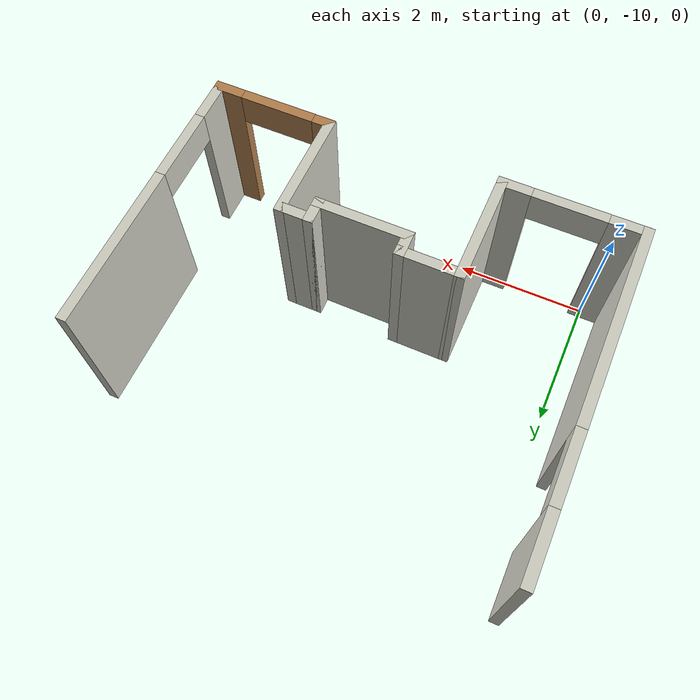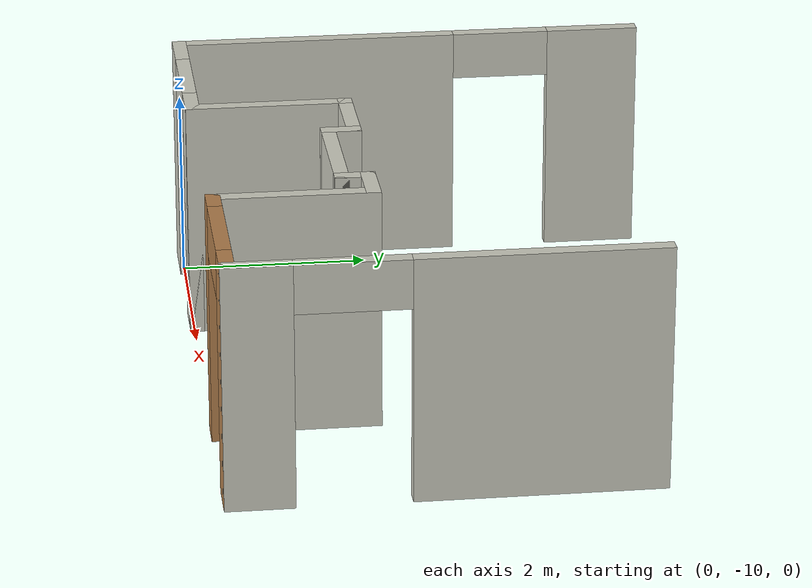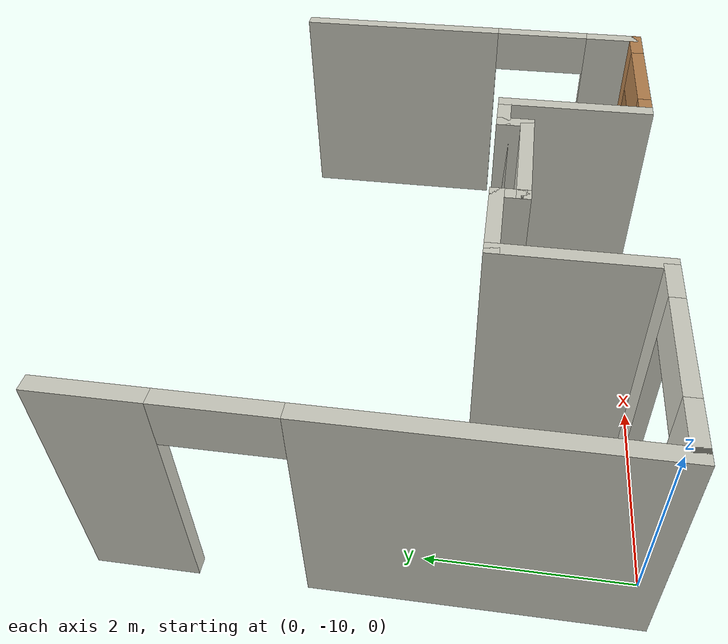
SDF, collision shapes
<sdf version="1.6">
 <model name="teknopark">
  <link name="Wall_55">
   <pose>-0.351077 -7.493 0 0 0 -1.5708</pose>
   <inertial>
    <mass>1</mass>
    <inertia><ixx>1</ixx><ixy>0</ixy><ixz>0</ixz><iyy>1</iyy><iyz>0</iyz><izz>1</izz></inertia>
   </inertial>
   <visual name="Wall_55_Visual_0">
    <pose>-2.05615 0 1.25 0 -0 0</pose>
    <geometry><box><size>0.994179 0.15 2.5</size></box></geometry>
    <material>
     <script><uri>file://media/materials/scripts/gazebo.material</uri><name>Gazebo/PaintedWall</name></script>
     <ambient>1 1 1 1</ambient>
     <diffuse>0.7 0.7 0.7 1</diffuse>
     <specular>0.01 0.01 0.01 1</specular>
     <emissive>0 0 0 1</emissive>
     <shader type="vertex"><normal_map>__default__</normal_map></shader>
    </material>
   </visual>
   <visual name="Wall_55_Visual_1">
    <pose>1.01709 0 1.25 0 -0 0</pose>
    <geometry><box><size>3.07229 0.15 2.5</size></box></geometry>
    <material>
     <script><uri>file://media/materials/scripts/gazebo.material</uri><name>Gazebo/PaintedWall</name></script>
     <ambient>1 1 1 1</ambient>
     <diffuse>0.7 0.7 0.7 1</diffuse>
     <specular>0.01 0.01 0.01 1</specular>
     <emissive>0 0 0 1</emissive>
     <shader type="vertex"><normal_map>__default__</normal_map></shader>
    </material>
   </visual>
   <visual name="Wall_55_Door">
    <pose>-1.03906 0 0 0 -0 0</pose>
    <geometry>
     <mesh><uri>model://teknopark/meshes/Door_Component_BI3.dae</uri><scale>1.2 1 1</scale></mesh>
    </geometry>
    <material>
     <ambient>0 0 1 1</ambient>
     <diffuse>0 0 1 1</diffuse>
     <specular>0.1 0.1 0.1 1</specular>
     <emissive>0 0 0 1</emissive>
     <script><name>Gazebo/Blue</name><uri>__default__</uri></script>
     <shader type="vertex"><normal_map>__default__</normal_map></shader>
    </material>
   </visual>
   <visual name="Wall_55_Visual_2">
    <pose>-1.03906 0 2.25 0 -0 0</pose>
    <geometry><box><size>1.04 0.15 0.5</size></box></geometry>
    <material>
     <script><uri>file://media/materials/scripts/gazebo.material</uri><name>Gazebo/PaintedWall</name></script>
     <ambient>1 1 1 1</ambient>
     <diffuse>0.7 0.7 0.7 1</diffuse>
     <specular>0.01 0.01 0.01 1</specular>
     <emissive>0 0 0 1</emissive>
     <shader type="vertex"><normal_map>__default__</normal_map></shader>
    </material>
   </visual>
   <collision name="Wall_55_Collision_1">
    <pose>1.01709 0 1.25 0 -0 0</pose>
    <geometry><box><size>3.07229 0.15 2.5</size></box></geometry>
    <surface>
     <friction>
      <ode><mu>1</mu><mu2>1</mu2><fdir1>0 0 0</fdir1><slip1>0</slip1><slip2>0</slip2></ode>
      <torsional>
       <coefficient>1</coefficient>
       <patch_radius>0</patch_radius>
       <surface_radius>0</surface_radius>
       <use_patch_radius>1</use_patch_radius>
       <ode><slip>0</slip></ode>
      </torsional>
     </friction>
     <bounce><restitution_coefficient>0</restitution_coefficient><threshold>1e+06</threshold></bounce>
     <contact>
      <collide_without_contact>0</collide_without_contact>
      <collide_without_contact_bitmask>1</collide_without_contact_bitmask>
      <collide_bitmask>1</collide_bitmask>
      <ode>
       <soft_cfm>0</soft_cfm>
       <soft_erp>0.2</soft_erp>
       <kp>1e+13</kp>
       <kd>1</kd>
       <max_vel>0.01</max_vel>
       <min_depth>0</min_depth>
      </ode>
      <bullet>
       <split_impulse>1</split_impulse>
       <split_impulse_penetration_threshold>-0.01</split_impulse_penetration_threshold>
       <soft_cfm>0</soft_cfm>
       <soft_erp>0.2</soft_erp>
       <kp>1e+13</kp>
       <kd>1</kd>
      </bullet>
     </contact>
    </surface>
   </collision>
   <collision name="Wall_55_Collision_0">
    <pose>-2.05615 0 1.25 0 -0 0</pose>
    <geometry><box><size>0.994179 0.15 2.5</size></box></geometry>
    <surface>
     <friction>
      <ode><mu>1</mu><mu2>1</mu2><fdir1>0 0 0</fdir1><slip1>0</slip1><slip2>0</slip2></ode>
      <torsional>
       <coefficient>1</coefficient>
       <patch_radius>0</patch_radius>
       <surface_radius>0</surface_radius>
       <use_patch_radius>1</use_patch_radius>
       <ode><slip>0</slip></ode>
      </torsional>
     </friction>
     <bounce><restitution_coefficient>0</restitution_coefficient><threshold>1e+06</threshold></bounce>
     <contact>
      <collide_without_contact>0</collide_without_contact>
      <collide_without_contact_bitmask>1</collide_without_contact_bitmask>
      <collide_bitmask>1</collide_bitmask>
      <ode>
       <soft_cfm>0</soft_cfm>
       <soft_erp>0.2</soft_erp>
       <kp>1e+13</kp>
       <kd>1</kd>
       <max_vel>0.01</max_vel>
       <min_depth>0</min_depth>
      </ode>
      <bullet>
       <split_impulse>1</split_impulse>
       <split_impulse_penetration_threshold>-0.01</split_impulse_penetration_threshold>
       <soft_cfm>0</soft_cfm>
       <soft_erp>0.2</soft_erp>
       <kp>1e+13</kp>
       <kd>1</kd>
      </bullet>
     </contact>
    </surface>
   </collision>
   <collision name="Wall_55_Collision_2">
    <pose>-1.03906 0 2.25 0 -0 0</pose>
    <geometry><box><size>1.04 0.15 0.5</size></box></geometry>
    <surface>
     <friction>
      <ode><mu>1</mu><mu2>1</mu2><fdir1>0 0 0</fdir1><slip1>0</slip1><slip2>0</slip2></ode>
      <torsional>
       <coefficient>1</coefficient>
       <patch_radius>0</patch_radius>
       <surface_radius>0</surface_radius>
       <use_patch_radius>1</use_patch_radius>
       <ode><slip>0</slip></ode>
      </torsional>
     </friction>
     <bounce><restitution_coefficient>0</restitution_coefficient><threshold>1e+06</threshold></bounce>
     <contact>
      <collide_without_contact>0</collide_without_contact>
      <collide_without_contact_bitmask>1</collide_without_contact_bitmask>
      <collide_bitmask>1</collide_bitmask>
      <ode>
       <soft_cfm>0</soft_cfm>
       <soft_erp>0.2</soft_erp>
       <kp>1e+13</kp>
       <kd>1</kd>
       <max_vel>0.01</max_vel>
       <min_depth>0</min_depth>
      </ode>
      <bullet>
       <split_impulse>1</split_impulse>
       <split_impulse_penetration_threshold>-0.01</split_impulse_penetration_threshold>
       <soft_cfm>0</soft_cfm>
       <soft_erp>0.2</soft_erp>
       <kp>1e+13</kp>
       <kd>1</kd>
      </bullet>
     </contact>
    </surface>
   </collision>
  </link>
  <link name="Wall_56">
   <pose>0.671923 -9.9715 0 0 -0 0</pose>
   <inertial>
    <mass>1</mass>
    <inertia><ixx>1</ixx><ixy>0</ixy><ixz>0</ixz><iyy>1</iyy><iyz>0</iyz><izz>1</izz></inertia>
   </inertial>
   <visual name="ModelPreview_1::Wall_56::visual_4">
    <pose>-0.797809 0 1.25 0 -0 0</pose>
    <geometry><box><size>0.600382 0.15 2.5</size></box></geometry>
    <material>
     <script><uri>file://media/materials/scripts/gazebo.material</uri><name>Gazebo/PaintedWall</name></script>
     <ambient>1 1 1 1</ambient>
     <diffuse>0.7 0.7 0.7 1</diffuse>
     <specular>0.01 0.01 0.01 1</specular>
     <emissive>0 0 0 1</emissive>
     <shader type="vertex"><normal_map>__default__</normal_map></shader>
    </material>
   </visual>
   <visual name="Wall_56_Visual_0">
    <pose>-0.797809 0 1.25 0 -0 0</pose>
    <geometry><box><size>0.600382 0.15 2.5</size></box></geometry>
    <material>
     <script><uri>file://media/materials/scripts/gazebo.material</uri><name>Gazebo/PaintedWall</name></script>
     <ambient>1 1 1 1</ambient>
     <diffuse>0.7 0.7 0.7 1</diffuse>
     <specular>0.01 0.01 0.01 1</specular>
     <emissive>0 0 0 1</emissive>
     <shader type="vertex"><normal_map>__default__</normal_map></shader>
    </material>
   </visual>
   <visual name="Wall_56_Door">
    <pose>0.044425 0 0 0 -0 0</pose>
    <geometry>
     <mesh><uri>model://teknopark/meshes/Door_Component_BI3.dae</uri><scale>1.2 1 1</scale></mesh>
    </geometry>
    <material>
     <shader type="vertex"><normal_map>__default__</normal_map></shader>
     <ambient>1 0 0 1</ambient>
     <diffuse>1 0 0 1</diffuse>
     <specular>0.1 0.1 0.1 1</specular>
     <emissive>0 0 0 1</emissive>
     <script><name>Gazebo/Red</name><uri>__default__</uri></script>
    </material>
   </visual>
   <visual name="Wall_56_Visual_2">
    <pose>0.044435 0 2.25 0 -0 0</pose>
    <geometry><box><size>1.08411 0.15 0.5</size></box></geometry>
    <material>
     <script><uri>file://media/materials/scripts/gazebo.material</uri><name>Gazebo/PaintedWall</name></script>
     <ambient>1 1 1 1</ambient>
     <diffuse>0.7 0.7 0.7 1</diffuse>
     <specular>0.01 0.01 0.01 1</specular>
     <emissive>0 0 0 1</emissive>
     <shader type="vertex"><normal_map>__default__</normal_map></shader>
    </material>
   </visual>
   <visual name="ModelPreview_3::Wall_56::visual_3">
    <pose>-0.797809 0 1.25 0 -0 0</pose>
    <geometry><box><size>0.600382 0.15 2.5</size></box></geometry>
    <material>
     <script><uri>file://media/materials/scripts/gazebo.material</uri><name>Gazebo/PaintedWall</name></script>
     <ambient>1 1 1 1</ambient>
     <diffuse>0.7 0.7 0.7 1</diffuse>
     <specular>0.01 0.01 0.01 1</specular>
     <emissive>0 0 0 1</emissive>
     <shader type="vertex"><normal_map>__default__</normal_map></shader>
    </material>
   </visual>
   <visual name="Wall_56_Visual_1">
    <pose>0.842243 0 1.25 0 -0 0</pose>
    <geometry><box><size>0.511513 0.15 2.5</size></box></geometry>
    <material>
     <script><uri>file://media/materials/scripts/gazebo.material</uri><name>Gazebo/PaintedWall</name></script>
     <ambient>1 1 1 1</ambient>
     <diffuse>0.7 0.7 0.7 1</diffuse>
     <specular>0.01 0.01 0.01 1</specular>
     <emissive>0 0 0 1</emissive>
     <shader type="vertex"><normal_map>__default__</normal_map></shader>
    </material>
   </visual>
   <collision name="Wall_56_Collision_1">
    <pose>0.842243 0 1.25 0 -0 0</pose>
    <geometry><box><size>0.511513 0.15 2.5</size></box></geometry>
    <surface>
     <friction>
      <ode><mu>1</mu><mu2>1</mu2><fdir1>0 0 0</fdir1><slip1>0</slip1><slip2>0</slip2></ode>
      <torsional>
       <coefficient>1</coefficient>
       <patch_radius>0</patch_radius>
       <surface_radius>0</surface_radius>
       <use_patch_radius>1</use_patch_radius>
       <ode><slip>0</slip></ode>
      </torsional>
     </friction>
     <bounce><restitution_coefficient>0</restitution_coefficient><threshold>1e+06</threshold></bounce>
     <contact>
      <collide_without_contact>0</collide_without_contact>
      <collide_without_contact_bitmask>1</collide_without_contact_bitmask>
      <collide_bitmask>1</collide_bitmask>
      <ode>
       <soft_cfm>0</soft_cfm>
       <soft_erp>0.2</soft_erp>
       <kp>1e+13</kp>
       <kd>1</kd>
       <max_vel>0.01</max_vel>
       <min_depth>0</min_depth>
      </ode>
      <bullet>
       <split_impulse>1</split_impulse>
       <split_impulse_penetration_threshold>-0.01</split_impulse_penetration_threshold>
       <soft_cfm>0</soft_cfm>
       <soft_erp>0.2</soft_erp>
       <kp>1e+13</kp>
       <kd>1</kd>
      </bullet>
     </contact>
    </surface>
   </collision>
   <collision name="Wall_56_Collision_0">
    <pose>-0.797809 0 1.25 0 -0 0</pose>
    <geometry><box><size>0.600382 0.15 2.5</size></box></geometry>
    <surface>
     <friction>
      <ode><mu>1</mu><mu2>1</mu2><fdir1>0 0 0</fdir1><slip1>0</slip1><slip2>0</slip2></ode>
      <torsional>
       <coefficient>1</coefficient>
       <patch_radius>0</patch_radius>
       <surface_radius>0</surface_radius>
       <use_patch_radius>1</use_patch_radius>
       <ode><slip>0</slip></ode>
      </torsional>
     </friction>
     <bounce><restitution_coefficient>0</restitution_coefficient><threshold>1e+06</threshold></bounce>
     <contact>
      <collide_without_contact>0</collide_without_contact>
      <collide_without_contact_bitmask>1</collide_without_contact_bitmask>
      <collide_bitmask>1</collide_bitmask>
      <ode>
       <soft_cfm>0</soft_cfm>
       <soft_erp>0.2</soft_erp>
       <kp>1e+13</kp>
       <kd>1</kd>
       <max_vel>0.01</max_vel>
       <min_depth>0</min_depth>
      </ode>
      <bullet>
       <split_impulse>1</split_impulse>
       <split_impulse_penetration_threshold>-0.01</split_impulse_penetration_threshold>
       <soft_cfm>0</soft_cfm>
       <soft_erp>0.2</soft_erp>
       <kp>1e+13</kp>
       <kd>1</kd>
      </bullet>
     </contact>
    </surface>
   </collision>
   <collision name="Wall_56_Collision_2">
    <pose>0.044435 0 2.25 0 -0 0</pose>
    <geometry><box><size>1.08411 0.15 0.5</size></box></geometry>
    <surface>
     <friction>
      <ode><mu>1</mu><mu2>1</mu2><fdir1>0 0 0</fdir1><slip1>0</slip1><slip2>0</slip2></ode>
      <torsional>
       <coefficient>1</coefficient>
       <patch_radius>0</patch_radius>
       <surface_radius>0</surface_radius>
       <use_patch_radius>1</use_patch_radius>
       <ode><slip>0</slip></ode>
      </torsional>
     </friction>
     <bounce><restitution_coefficient>0</restitution_coefficient><threshold>1e+06</threshold></bounce>
     <contact>
      <collide_without_contact>0</collide_without_contact>
      <collide_without_contact_bitmask>1</collide_without_contact_bitmask>
      <collide_bitmask>1</collide_bitmask>
      <ode>
       <soft_cfm>0</soft_cfm>
       <soft_erp>0.2</soft_erp>
       <kp>1e+13</kp>
       <kd>1</kd>
       <max_vel>0.01</max_vel>
       <min_depth>0</min_depth>
      </ode>
      <bullet>
       <split_impulse>1</split_impulse>
       <split_impulse_penetration_threshold>-0.01</split_impulse_penetration_threshold>
       <soft_cfm>0</soft_cfm>
       <soft_erp>0.2</soft_erp>
       <kp>1e+13</kp>
       <kd>1</kd>
      </bullet>
     </contact>
    </surface>
   </collision>
  </link>
  <link name="Wall_57">
   <pose>1.69492 -9.1765 0 0 -0 1.5708</pose>
   <inertial>
    <mass>1</mass>
    <inertia><ixx>1</ixx><ixy>0</ixy><ixz>0</ixz><iyy>1</iyy><iyz>0</iyz><izz>1</izz></inertia>
   </inertial>
   <visual name="Wall_57_Visual">
    <pose>0 0 1.25 0 -0 0</pose>
    <geometry><box><size>1.74 0.15 2.5</size></box></geometry>
    <material>
     <script><uri>file://media/materials/scripts/gazebo.material</uri><name>Gazebo/PaintedWall</name></script>
     <ambient>1 1 1 1</ambient>
     <diffuse>0.7 0.7 0.7 1</diffuse>
     <specular>0.01 0.01 0.01 1</specular>
     <emissive>0 0 0 1</emissive>
     <shader type="vertex"><normal_map>__default__</normal_map></shader>
    </material>
   </visual>
   <visual name="ModelPreview_3::Wall_57::visual_1">
    <pose>0 0 1.25 0 -0 0</pose>
    <geometry><box><size>1.74 0.15 2.5</size></box></geometry>
    <material>
     <script><uri>file://media/materials/scripts/gazebo.material</uri><name>Gazebo/Grey</name></script>
     <ambient>1 1 1 1</ambient>
     <diffuse>0.7 0.7 0.7 1</diffuse>
     <specular>0.01 0.01 0.01 1</specular>
     <emissive>0 0 0 1</emissive>
     <shader type="vertex"><normal_map>__default__</normal_map></shader>
    </material>
   </visual>
   <collision name="Wall_57_Collision">
    <pose>0 0 1.25 0 -0 0</pose>
    <geometry><box><size>1.74 0.15 2.5</size></box></geometry>
    <surface>
     <friction>
      <ode><mu>1</mu><mu2>1</mu2><fdir1>0 0 0</fdir1><slip1>0</slip1><slip2>0</slip2></ode>
      <torsional>
       <coefficient>1</coefficient>
       <patch_radius>0</patch_radius>
       <surface_radius>0</surface_radius>
       <use_patch_radius>1</use_patch_radius>
       <ode><slip>0</slip></ode>
      </torsional>
     </friction>
     <bounce><restitution_coefficient>0</restitution_coefficient><threshold>1e+06</threshold></bounce>
     <contact>
      <collide_without_contact>0</collide_without_contact>
      <collide_without_contact_bitmask>1</collide_without_contact_bitmask>
      <collide_bitmask>1</collide_bitmask>
      <ode>
       <soft_cfm>0</soft_cfm>
       <soft_erp>0.2</soft_erp>
       <kp>1e+13</kp>
       <kd>1</kd>
       <max_vel>0.01</max_vel>
       <min_depth>0</min_depth>
      </ode>
      <bullet>
       <split_impulse>1</split_impulse>
       <split_impulse_penetration_threshold>-0.01</split_impulse_penetration_threshold>
       <soft_cfm>0</soft_cfm>
       <soft_erp>0.2</soft_erp>
       <kp>1e+13</kp>
       <kd>1</kd>
      </bullet>
     </contact>
    </surface>
   </collision>
  </link>
  <link name="Wall_59">
   <pose>2.11992 -8.3815 0 0 0 -1e-06</pose>
   <inertial>
    <mass>1</mass>
    <inertia><ixx>1</ixx><ixy>0</ixy><ixz>0</ixz><iyy>1</iyy><iyz>0</iyz><izz>1</izz></inertia>
   </inertial>
   <visual name="Wall_59_Visual">
    <pose>0 0 1.25 0 -0 0</pose>
    <geometry><box><size>1 0.15 2.5</size></box></geometry>
    <material>
     <script><uri>file://media/materials/scripts/gazebo.material</uri><name>Gazebo/PaintedWall</name></script>
     <ambient>1 1 1 1</ambient>
     <diffuse>0.7 0.7 0.7 1</diffuse>
     <specular>0.01 0.01 0.01 1</specular>
     <emissive>0 0 0 1</emissive>
     <shader type="vertex"><normal_map>__default__</normal_map></shader>
    </material>
   </visual>
   <collision name="Wall_59_Collision">
    <pose>0 0 1.25 0 -0 0</pose>
    <geometry><box><size>1 0.15 2.5</size></box></geometry>
    <surface>
     <friction>
      <ode><mu>1</mu><mu2>1</mu2><fdir1>0 0 0</fdir1><slip1>0</slip1><slip2>0</slip2></ode>
      <torsional>
       <coefficient>1</coefficient>
       <patch_radius>0</patch_radius>
       <surface_radius>0</surface_radius>
       <use_patch_radius>1</use_patch_radius>
       <ode><slip>0</slip></ode>
      </torsional>
     </friction>
     <bounce><restitution_coefficient>0</restitution_coefficient><threshold>1e+06</threshold></bounce>
     <contact>
      <collide_without_contact>0</collide_without_contact>
      <collide_without_contact_bitmask>1</collide_without_contact_bitmask>
      <collide_bitmask>1</collide_bitmask>
      <ode>
       <soft_cfm>0</soft_cfm>
       <soft_erp>0.2</soft_erp>
       <kp>1e+13</kp>
       <kd>1</kd>
       <max_vel>0.01</max_vel>
       <min_depth>0</min_depth>
      </ode>
      <bullet>
       <split_impulse>1</split_impulse>
       <split_impulse_penetration_threshold>-0.01</split_impulse_penetration_threshold>
       <soft_cfm>0</soft_cfm>
       <soft_erp>0.2</soft_erp>
       <kp>1e+13</kp>
       <kd>1</kd>
      </bullet>
     </contact>
    </surface>
   </collision>
  </link>
  <link name="Wall_61">
   <pose>2.54492 -8.5135 0 0 0 -1.5708</pose>
   <inertial>
    <mass>1</mass>
    <inertia><ixx>1</ixx><ixy>0</ixy><ixz>0</ixz><iyy>1</iyy><iyz>0</iyz><izz>1</izz></inertia>
   </inertial>
   <visual name="Wall_61_Visual">
    <pose>0 0 1.25 0 -0 0</pose>
    <geometry><box><size>0.414 0.15 2.5</size></box></geometry>
    <material>
     <script><uri>file://media/materials/scripts/gazebo.material</uri><name>Gazebo/PaintedWall</name></script>
     <ambient>1 1 1 1</ambient>
     <diffuse>0.7 0.7 0.7 1</diffuse>
     <specular>0.01 0.01 0.01 1</specular>
     <emissive>0 0 0 1</emissive>
     <shader type="vertex"><normal_map>__default__</normal_map></shader>
    </material>
   </visual>
   <collision name="Wall_61_Collision">
    <pose>0 0 1.25 0 -0 0</pose>
    <geometry><box><size>0.414 0.15 2.5</size></box></geometry>
    <surface>
     <friction>
      <ode><mu>1</mu><mu2>1</mu2><fdir1>0 0 0</fdir1><slip1>0</slip1><slip2>0</slip2></ode>
      <torsional>
       <coefficient>1</coefficient>
       <patch_radius>0</patch_radius>
       <surface_radius>0</surface_radius>
       <use_patch_radius>1</use_patch_radius>
       <ode><slip>0</slip></ode>
      </torsional>
     </friction>
     <bounce><restitution_coefficient>0</restitution_coefficient><threshold>1e+06</threshold></bounce>
     <contact>
      <collide_without_contact>0</collide_without_contact>
      <collide_without_contact_bitmask>1</collide_without_contact_bitmask>
      <collide_bitmask>1</collide_bitmask>
      <ode>
       <soft_cfm>0</soft_cfm>
       <soft_erp>0.2</soft_erp>
       <kp>1e+13</kp>
       <kd>1</kd>
       <max_vel>0.01</max_vel>
       <min_depth>0</min_depth>
      </ode>
      <bullet>
       <split_impulse>1</split_impulse>
       <split_impulse_penetration_threshold>-0.01</split_impulse_penetration_threshold>
       <soft_cfm>0</soft_cfm>
       <soft_erp>0.2</soft_erp>
       <kp>1e+13</kp>
       <kd>1</kd>
      </bullet>
     </contact>
    </surface>
   </collision>
  </link>
  <link name="Wall_62">
   <pose>3.20242 -8.6455 0 0 -0 0</pose>
   <inertial>
    <mass>1</mass>
    <inertia><ixx>1</ixx><ixy>0</ixy><ixz>0</ixz><iyy>1</iyy><iyz>0</iyz><izz>1</izz></inertia>
   </inertial>
   <visual name="Wall_62_Visual">
    <pose>0 0 1.25 0 -0 0</pose>
    <geometry><box><size>1.465 0.15 2.5</size></box></geometry>
    <material>
     <script><uri>file://media/materials/scripts/gazebo.material</uri><name>Gazebo/PaintedWall</name></script>
     <ambient>1 1 1 1</ambient>
     <diffuse>0.7 0.7 0.7 1</diffuse>
     <specular>0.01 0.01 0.01 1</specular>
     <emissive>0 0 0 1</emissive>
     <shader type="vertex"><normal_map>__default__</normal_map></shader>
    </material>
   </visual>
   <collision name="Wall_62_Collision">
    <pose>0 0 1.25 0 -0 0</pose>
    <geometry><box><size>1.465 0.15 2.5</size></box></geometry>
    <surface>
     <friction>
      <ode><mu>1</mu><mu2>1</mu2><fdir1>0 0 0</fdir1><slip1>0</slip1><slip2>0</slip2></ode>
      <torsional>
       <coefficient>1</coefficient>
       <patch_radius>0</patch_radius>
       <surface_radius>0</surface_radius>
       <use_patch_radius>1</use_patch_radius>
       <ode><slip>0</slip></ode>
      </torsional>
     </friction>
     <bounce><restitution_coefficient>0</restitution_coefficient><threshold>1e+06</threshold></bounce>
     <contact>
      <collide_without_contact>0</collide_without_contact>
      <collide_without_contact_bitmask>1</collide_without_contact_bitmask>
      <collide_bitmask>1</collide_bitmask>
      <ode>
       <soft_cfm>0</soft_cfm>
       <soft_erp>0.2</soft_erp>
       <kp>1e+13</kp>
       <kd>1</kd>
       <max_vel>0.01</max_vel>
       <min_depth>0</min_depth>
      </ode>
      <bullet>
       <split_impulse>1</split_impulse>
       <split_impulse_penetration_threshold>-0.01</split_impulse_penetration_threshold>
       <soft_cfm>0</soft_cfm>
       <soft_erp>0.2</soft_erp>
       <kp>1e+13</kp>
       <kd>1</kd>
      </bullet>
     </contact>
    </surface>
   </collision>
  </link>
  <link name="Wall_63">
   <pose>3.85992 -8.5135 0 0 -0 1.5708</pose>
   <inertial>
    <mass>1</mass>
    <inertia><ixx>1</ixx><ixy>0</ixy><ixz>0</ixz><iyy>1</iyy><iyz>0</iyz><izz>1</izz></inertia>
   </inertial>
   <visual name="Wall_63_Visual">
    <pose>0 0 1.25 0 -0 0</pose>
    <geometry><box><size>0.414 0.15 2.5</size></box></geometry>
    <material>
     <script><uri>file://media/materials/scripts/gazebo.material</uri><name>Gazebo/PaintedWall</name></script>
     <ambient>1 1 1 1</ambient>
     <diffuse>0.7 0.7 0.7 1</diffuse>
     <specular>0.01 0.01 0.01 1</specular>
     <emissive>0 0 0 1</emissive>
     <shader type="vertex"><normal_map>__default__</normal_map></shader>
    </material>
   </visual>
   <collision name="Wall_63_Collision">
    <pose>0 0 1.25 0 -0 0</pose>
    <geometry><box><size>0.414 0.15 2.5</size></box></geometry>
    <surface>
     <friction>
      <ode><mu>1</mu><mu2>1</mu2><fdir1>0 0 0</fdir1><slip1>0</slip1><slip2>0</slip2></ode>
      <torsional>
       <coefficient>1</coefficient>
       <patch_radius>0</patch_radius>
       <surface_radius>0</surface_radius>
       <use_patch_radius>1</use_patch_radius>
       <ode><slip>0</slip></ode>
      </torsional>
     </friction>
     <bounce><restitution_coefficient>0</restitution_coefficient><threshold>1e+06</threshold></bounce>
     <contact>
      <collide_without_contact>0</collide_without_contact>
      <collide_without_contact_bitmask>1</collide_without_contact_bitmask>
      <collide_bitmask>1</collide_bitmask>
      <ode>
       <soft_cfm>0</soft_cfm>
       <soft_erp>0.2</soft_erp>
       <kp>1e+13</kp>
       <kd>1</kd>
       <max_vel>0.01</max_vel>
       <min_depth>0</min_depth>
      </ode>
      <bullet>
       <split_impulse>1</split_impulse>
       <split_impulse_penetration_threshold>-0.01</split_impulse_penetration_threshold>
       <soft_cfm>0</soft_cfm>
       <soft_erp>0.2</soft_erp>
       <kp>1e+13</kp>
       <kd>1</kd>
      </bullet>
     </contact>
    </surface>
   </collision>
  </link>
  <link name="Wall_64">
   <pose>4.07492 -8.3815 0 0 -0 0</pose>
   <inertial>
    <mass>1</mass>
    <inertia><ixx>1</ixx><ixy>0</ixy><ixz>0</ixz><iyy>1</iyy><iyz>0</iyz><izz>1</izz></inertia>
   </inertial>
   <visual name="Wall_64_Visual">
    <pose>0 0 1.25 0 -0 0</pose>
    <geometry><box><size>0.58 0.15 2.5</size></box></geometry>
    <material>
     <script><uri>file://media/materials/scripts/gazebo.material</uri><name>Gazebo/PaintedWall</name></script>
     <ambient>1 1 1 1</ambient>
     <diffuse>0.7 0.7 0.7 1</diffuse>
     <specular>0.01 0.01 0.01 1</specular>
     <emissive>0 0 0 1</emissive>
     <shader type="vertex"><normal_map>__default__</normal_map></shader>
    </material>
   </visual>
   <collision name="Wall_64_Collision">
    <pose>0 0 1.25 0 -0 0</pose>
    <geometry><box><size>0.58 0.15 2.5</size></box></geometry>
    <surface>
     <friction>
      <ode><mu>1</mu><mu2>1</mu2><fdir1>0 0 0</fdir1><slip1>0</slip1><slip2>0</slip2></ode>
      <torsional>
       <coefficient>1</coefficient>
       <patch_radius>0</patch_radius>
       <surface_radius>0</surface_radius>
       <use_patch_radius>1</use_patch_radius>
       <ode><slip>0</slip></ode>
      </torsional>
     </friction>
     <bounce><restitution_coefficient>0</restitution_coefficient><threshold>1e+06</threshold></bounce>
     <contact>
      <collide_without_contact>0</collide_without_contact>
      <collide_without_contact_bitmask>1</collide_without_contact_bitmask>
      <collide_bitmask>1</collide_bitmask>
      <ode>
       <soft_cfm>0</soft_cfm>
       <soft_erp>0.2</soft_erp>
       <kp>1e+13</kp>
       <kd>1</kd>
       <max_vel>0.01</max_vel>
       <min_depth>0</min_depth>
      </ode>
      <bullet>
       <split_impulse>1</split_impulse>
       <split_impulse_penetration_threshold>-0.01</split_impulse_penetration_threshold>
       <soft_cfm>0</soft_cfm>
       <soft_erp>0.2</soft_erp>
       <kp>1e+13</kp>
       <kd>1</kd>
      </bullet>
     </contact>
    </surface>
   </collision>
  </link>
  <link name="Wall_68">
   <pose>4.28992 -9.1655 0 0 0 -1.5708</pose>
   <inertial>
    <mass>1</mass>
    <inertia><ixx>1</ixx><ixy>0</ixy><ixz>0</ixz><iyy>1</iyy><iyz>0</iyz><izz>1</izz></inertia>
   </inertial>
   <visual name="Wall_68_Visual">
    <pose>0 0 1.25 0 -0 0</pose>
    <geometry><box><size>1.718 0.15 2.5</size></box></geometry>
    <material>
     <script><uri>file://media/materials/scripts/gazebo.material</uri><name>Gazebo/PaintedWall</name></script>
     <ambient>1 1 1 1</ambient>
     <diffuse>0.7 0.7 0.7 1</diffuse>
     <specular>0.01 0.01 0.01 1</specular>
     <emissive>0 0 0 1</emissive>
     <shader type="vertex"><normal_map>__default__</normal_map></shader>
    </material>
   </visual>
   <collision name="Wall_68_Collision">
    <pose>0 0 1.25 0 -0 0</pose>
    <geometry><box><size>1.718 0.15 2.5</size></box></geometry>
    <surface>
     <friction>
      <ode><mu>1</mu><mu2>1</mu2><fdir1>0 0 0</fdir1><slip1>0</slip1><slip2>0</slip2></ode>
      <torsional>
       <coefficient>1</coefficient>
       <patch_radius>0</patch_radius>
       <surface_radius>0</surface_radius>
       <use_patch_radius>1</use_patch_radius>
       <ode><slip>0</slip></ode>
      </torsional>
     </friction>
     <bounce><restitution_coefficient>0</restitution_coefficient><threshold>1e+06</threshold></bounce>
     <contact>
      <collide_without_contact>0</collide_without_contact>
      <collide_without_contact_bitmask>1</collide_without_contact_bitmask>
      <collide_bitmask>1</collide_bitmask>
      <ode>
       <soft_cfm>0</soft_cfm>
       <soft_erp>0.2</soft_erp>
       <kp>1e+13</kp>
       <kd>1</kd>
       <max_vel>0.01</max_vel>
       <min_depth>0</min_depth>
      </ode>
      <bullet>
       <split_impulse>1</split_impulse>
       <split_impulse_penetration_threshold>-0.01</split_impulse_penetration_threshold>
       <soft_cfm>0</soft_cfm>
       <soft_erp>0.2</soft_erp>
       <kp>1e+13</kp>
       <kd>1</kd>
      </bullet>
     </contact>
    </surface>
   </collision>
  </link>
  <link name="Wall_69">
   <pose>5.17042 -9.9495 0 0 -0 0</pose>
   <inertial>
    <mass>1</mass>
    <inertia><ixx>1</ixx><ixy>0</ixy><ixz>0</ixz><iyy>1</iyy><iyz>0</iyz><izz>1</izz></inertia>
   </inertial>
   <visual name="Wall_69_Door">
    <pose>-0.068433 0 0 0 -0 0</pose>
    <geometry>
     <mesh><uri>model://teknopark/meshes/Door_Component_BI3.dae</uri><scale>1.2 1 1</scale></mesh>
    </geometry>
    <material>
     <shader type="vertex"><normal_map>__default__</normal_map></shader>
     <ambient>1 1 1 1</ambient>
     <diffuse>1 1 1 1</diffuse>
     <specular>0.2 0.2 0.2 1</specular>
     <emissive>0 0 0 1</emissive>
     <script><name>Gazebo/Wood</name><uri>__default__</uri></script>
    </material>
   </visual>
   <visual name="Wall_69_Visual_2">
    <pose>-0.068433 0 2.25 0 -0 0</pose>
    <geometry><box><size>1.12356 0.15 0.5</size></box></geometry>
    <material>
     <script><uri>file://media/materials/scripts/gazebo.material</uri><name>Gazebo/PaintedWall</name></script>
     <ambient>1 1 1 1</ambient>
     <diffuse>0.7 0.7 0.7 1</diffuse>
     <specular>0.01 0.01 0.01 1</specular>
     <emissive>0 0 0 1</emissive>
     <shader type="vertex"><normal_map>__default__</normal_map></shader>
    </material>
   </visual>
   <visual name="Wall_69_Visual_0">
    <pose>-0.792742 0 1.25 0 -0 0</pose>
    <geometry><box><size>0.325064 0.15 2.5</size></box></geometry>
    <material>
     <script><uri>file://media/materials/scripts/gazebo.material</uri><name>Gazebo/PaintedWall</name></script>
     <ambient>1 1 1 1</ambient>
     <diffuse>0.7 0.7 0.7 1</diffuse>
     <specular>0.01 0.01 0.01 1</specular>
     <emissive>0 0 0 1</emissive>
     <shader type="vertex"><normal_map>__default__</normal_map></shader>
    </material>
   </visual>
   <visual name="Wall_69_Visual_1">
    <pose>0.72431 0 1.25 0 -0 0</pose>
    <geometry><box><size>0.461929 0.15 2.5</size></box></geometry>
    <material>
     <script><uri>file://media/materials/scripts/gazebo.material</uri><name>Gazebo/PaintedWall</name></script>
     <ambient>1 1 1 1</ambient>
     <diffuse>0.7 0.7 0.7 1</diffuse>
     <specular>0.01 0.01 0.01 1</specular>
     <emissive>0 0 0 1</emissive>
     <shader type="vertex"><normal_map>__default__</normal_map></shader>
    </material>
   </visual>
   <collision name="Wall_69_Collision_0">
    <pose>-0.792742 0 1.25 0 -0 0</pose>
    <geometry><box><size>0.325064 0.15 2.5</size></box></geometry>
    <surface>
     <friction>
      <ode><mu>1</mu><mu2>1</mu2><fdir1>0 0 0</fdir1><slip1>0</slip1><slip2>0</slip2></ode>
      <torsional>
       <coefficient>1</coefficient>
       <patch_radius>0</patch_radius>
       <surface_radius>0</surface_radius>
       <use_patch_radius>1</use_patch_radius>
       <ode><slip>0</slip></ode>
      </torsional>
     </friction>
     <bounce><restitution_coefficient>0</restitution_coefficient><threshold>1e+06</threshold></bounce>
     <contact>
      <collide_without_contact>0</collide_without_contact>
      <collide_without_contact_bitmask>1</collide_without_contact_bitmask>
      <collide_bitmask>1</collide_bitmask>
      <ode>
       <soft_cfm>0</soft_cfm>
       <soft_erp>0.2</soft_erp>
       <kp>1e+13</kp>
       <kd>1</kd>
       <max_vel>0.01</max_vel>
       <min_depth>0</min_depth>
      </ode>
      <bullet>
       <split_impulse>1</split_impulse>
       <split_impulse_penetration_threshold>-0.01</split_impulse_penetration_threshold>
       <soft_cfm>0</soft_cfm>
       <soft_erp>0.2</soft_erp>
       <kp>1e+13</kp>
       <kd>1</kd>
      </bullet>
     </contact>
    </surface>
   </collision>
   <collision name="Wall_69_Collision_2">
    <pose>-0.068433 0 2.25 0 -0 0</pose>
    <geometry><box><size>1.12356 0.15 0.5</size></box></geometry>
    <surface>
     <friction>
      <ode><mu>1</mu><mu2>1</mu2><fdir1>0 0 0</fdir1><slip1>0</slip1><slip2>0</slip2></ode>
      <torsional>
       <coefficient>1</coefficient>
       <patch_radius>0</patch_radius>
       <surface_radius>0</surface_radius>
       <use_patch_radius>1</use_patch_radius>
       <ode><slip>0</slip></ode>
      </torsional>
     </friction>
     <bounce><restitution_coefficient>0</restitution_coefficient><threshold>1e+06</threshold></bounce>
     <contact>
      <collide_without_contact>0</collide_without_contact>
      <collide_without_contact_bitmask>1</collide_without_contact_bitmask>
      <collide_bitmask>1</collide_bitmask>
      <ode>
       <soft_cfm>0</soft_cfm>
       <soft_erp>0.2</soft_erp>
       <kp>1e+13</kp>
       <kd>1</kd>
       <max_vel>0.01</max_vel>
       <min_depth>0</min_depth>
      </ode>
      <bullet>
       <split_impulse>1</split_impulse>
       <split_impulse_penetration_threshold>-0.01</split_impulse_penetration_threshold>
       <soft_cfm>0</soft_cfm>
       <soft_erp>0.2</soft_erp>
       <kp>1e+13</kp>
       <kd>1</kd>
      </bullet>
     </contact>
    </surface>
   </collision>
   <collision name="Wall_69_Collision_1">
    <pose>0.72431 0 1.25 0 -0 0</pose>
    <geometry><box><size>0.461929 0.15 2.5</size></box></geometry>
    <surface>
     <friction>
      <ode><mu>1</mu><mu2>1</mu2><fdir1>0 0 0</fdir1><slip1>0</slip1><slip2>0</slip2></ode>
      <torsional>
       <coefficient>1</coefficient>
       <patch_radius>0</patch_radius>
       <surface_radius>0</surface_radius>
       <use_patch_radius>1</use_patch_radius>
       <ode><slip>0</slip></ode>
      </torsional>
     </friction>
     <bounce><restitution_coefficient>0</restitution_coefficient><threshold>1e+06</threshold></bounce>
     <contact>
      <collide_without_contact>0</collide_without_contact>
      <collide_without_contact_bitmask>1</collide_without_contact_bitmask>
      <collide_bitmask>1</collide_bitmask>
      <ode>
       <soft_cfm>0</soft_cfm>
       <soft_erp>0.2</soft_erp>
       <kp>1e+13</kp>
       <kd>1</kd>
       <max_vel>0.01</max_vel>
       <min_depth>0</min_depth>
      </ode>
      <bullet>
       <split_impulse>1</split_impulse>
       <split_impulse_penetration_threshold>-0.01</split_impulse_penetration_threshold>
       <soft_cfm>0</soft_cfm>
       <soft_erp>0.2</soft_erp>
       <kp>1e+13</kp>
       <kd>1</kd>
      </bullet>
     </contact>
    </surface>
   </collision>
  </link>
  <link name="Wall_70">
   <pose>6.05092 -7.8745 0 0 -0 1.5708</pose>
   <inertial>
    <mass>1</mass>
    <inertia><ixx>1</ixx><ixy>0</ixy><ixz>0</ixz><iyy>1</iyy><iyz>0</iyz><izz>1</izz></inertia>
   </inertial>
   <visual name="Wall_70_Visual_2">
    <pose>-0.899783 0 2.25 0 -0 0</pose>
    <geometry><box><size>1.12356 0.15 0.5</size></box></geometry>
    <material>
     <script><uri>file://media/materials/scripts/gazebo.material</uri><name>Gazebo/PaintedWall</name></script>
     <ambient>1 1 1 1</ambient>
     <diffuse>0.7 0.7 0.7 1</diffuse>
     <specular>0.01 0.01 0.01 1</specular>
     <emissive>0 0 0 1</emissive>
     <shader type="vertex"><normal_map>__default__</normal_map></shader>
    </material>
   </visual>
   <visual name="Wall_70_Visual_1">
    <pose>0.905997 0 1.25 0 -0 0</pose>
    <geometry><box><size>2.488 0.15 2.5</size></box></geometry>
    <material>
     <script><uri>file://media/materials/scripts/gazebo.material</uri><name>Gazebo/PaintedWall</name></script>
     <ambient>1 1 1 1</ambient>
     <diffuse>0.7 0.7 0.7 1</diffuse>
     <specular>0.01 0.01 0.01 1</specular>
     <emissive>0 0 0 1</emissive>
     <shader type="vertex"><normal_map>__default__</normal_map></shader>
    </material>
   </visual>
   <visual name="Wall_70_Visual_0">
    <pose>-1.80578 0 1.25 0 -0 0</pose>
    <geometry><box><size>0.688439 0.15 2.5</size></box></geometry>
    <material>
     <script><uri>file://media/materials/scripts/gazebo.material</uri><name>Gazebo/PaintedWall</name></script>
     <ambient>1 1 1 1</ambient>
     <diffuse>0.7 0.7 0.7 1</diffuse>
     <specular>0.01 0.01 0.01 1</specular>
     <emissive>0 0 0 1</emissive>
     <shader type="vertex"><normal_map>__default__</normal_map></shader>
    </material>
   </visual>
   <visual name="ModelPreview_3::Wall_70::visual_3">
    <pose>-0.899783 0 2.25 0 -0 0</pose>
    <geometry><box><size>1.12356 0.15 0.5</size></box></geometry>
    <material>
     <script><uri>file://media/materials/scripts/gazebo.material</uri><name>Gazebo/PaintedWall</name></script>
     <ambient>1 1 1 1</ambient>
     <diffuse>0.7 0.7 0.7 1</diffuse>
     <specular>0.01 0.01 0.01 1</specular>
     <emissive>0 0 0 1</emissive>
     <shader type="vertex"><normal_map>__default__</normal_map></shader>
    </material>
   </visual>
   <visual name="Wall_70_Door">
    <pose>-0.899783 0 0 0 -0 0</pose>
    <geometry>
     <mesh><uri>model://teknopark/meshes/Door_Component_BI3.dae</uri><scale>1.2 1 1</scale></mesh>
    </geometry>
    <material>
     <shader type="vertex"><normal_map>__default__</normal_map></shader>
     <ambient>0.7 0.7 0 1</ambient>
     <diffuse>0.7 0.7 0 1</diffuse>
     <specular>0 0 0 0</specular>
     <emissive>0 0 0 1</emissive>
     <script><name>Gazebo/DarkYellow</name><uri>__default__</uri></script>
    </material>
   </visual>
   <collision name="Wall_70_Collision_1">
    <pose>0.905997 0 1.25 0 -0 0</pose>
    <geometry><box><size>2.488 0.15 2.5</size></box></geometry>
    <surface>
     <friction>
      <ode><mu>1</mu><mu2>1</mu2><fdir1>0 0 0</fdir1><slip1>0</slip1><slip2>0</slip2></ode>
      <torsional>
       <coefficient>1</coefficient>
       <patch_radius>0</patch_radius>
       <surface_radius>0</surface_radius>
       <use_patch_radius>1</use_patch_radius>
       <ode><slip>0</slip></ode>
      </torsional>
     </friction>
     <bounce><restitution_coefficient>0</restitution_coefficient><threshold>1e+06</threshold></bounce>
     <contact>
      <collide_without_contact>0</collide_without_contact>
      <collide_without_contact_bitmask>1</collide_without_contact_bitmask>
      <collide_bitmask>1</collide_bitmask>
      <ode>
       <soft_cfm>0</soft_cfm>
       <soft_erp>0.2</soft_erp>
       <kp>1e+13</kp>
       <kd>1</kd>
       <max_vel>0.01</max_vel>
       <min_depth>0</min_depth>
      </ode>
      <bullet>
       <split_impulse>1</split_impulse>
       <split_impulse_penetration_threshold>-0.01</split_impulse_penetration_threshold>
       <soft_cfm>0</soft_cfm>
       <soft_erp>0.2</soft_erp>
       <kp>1e+13</kp>
       <kd>1</kd>
      </bullet>
     </contact>
    </surface>
   </collision>
   <collision name="Wall_70_Collision_2">
    <pose>-0.899783 0 2.25 0 -0 0</pose>
    <geometry><box><size>1.12356 0.15 0.5</size></box></geometry>
    <surface>
     <friction>
      <ode><mu>1</mu><mu2>1</mu2><fdir1>0 0 0</fdir1><slip1>0</slip1><slip2>0</slip2></ode>
      <torsional>
       <coefficient>1</coefficient>
       <patch_radius>0</patch_radius>
       <surface_radius>0</surface_radius>
       <use_patch_radius>1</use_patch_radius>
       <ode><slip>0</slip></ode>
      </torsional>
     </friction>
     <bounce><restitution_coefficient>0</restitution_coefficient><threshold>1e+06</threshold></bounce>
     <contact>
      <collide_without_contact>0</collide_without_contact>
      <collide_without_contact_bitmask>1</collide_without_contact_bitmask>
      <collide_bitmask>1</collide_bitmask>
      <ode>
       <soft_cfm>0</soft_cfm>
       <soft_erp>0.2</soft_erp>
       <kp>1e+13</kp>
       <kd>1</kd>
       <max_vel>0.01</max_vel>
       <min_depth>0</min_depth>
      </ode>
      <bullet>
       <split_impulse>1</split_impulse>
       <split_impulse_penetration_threshold>-0.01</split_impulse_penetration_threshold>
       <soft_cfm>0</soft_cfm>
       <soft_erp>0.2</soft_erp>
       <kp>1e+13</kp>
       <kd>1</kd>
      </bullet>
     </contact>
    </surface>
   </collision>
   <collision name="Wall_70_Collision_0">
    <pose>-1.80578 0 1.25 0 -0 0</pose>
    <geometry><box><size>0.688439 0.15 2.5</size></box></geometry>
    <surface>
     <friction>
      <ode><mu>1</mu><mu2>1</mu2><fdir1>0 0 0</fdir1><slip1>0</slip1><slip2>0</slip2></ode>
      <torsional>
       <coefficient>1</coefficient>
       <patch_radius>0</patch_radius>
       <surface_radius>0</surface_radius>
       <use_patch_radius>1</use_patch_radius>
       <ode><slip>0</slip></ode>
      </torsional>
     </friction>
     <bounce><restitution_coefficient>0</restitution_coefficient><threshold>1e+06</threshold></bounce>
     <contact>
      <collide_without_contact>0</collide_without_contact>
      <collide_without_contact_bitmask>1</collide_without_contact_bitmask>
      <collide_bitmask>1</collide_bitmask>
      <ode>
       <soft_cfm>0</soft_cfm>
       <soft_erp>0.2</soft_erp>
       <kp>1e+13</kp>
       <kd>1</kd>
       <max_vel>0.01</max_vel>
       <min_depth>0</min_depth>
      </ode>
      <bullet>
       <split_impulse>1</split_impulse>
       <split_impulse_penetration_threshold>-0.01</split_impulse_penetration_threshold>
       <soft_cfm>0</soft_cfm>
       <soft_erp>0.2</soft_erp>
       <kp>1e+13</kp>
       <kd>1</kd>
      </bullet>
     </contact>
    </surface>
   </collision>
  </link>
  <static>1</static>
 </model>
</sdf>
